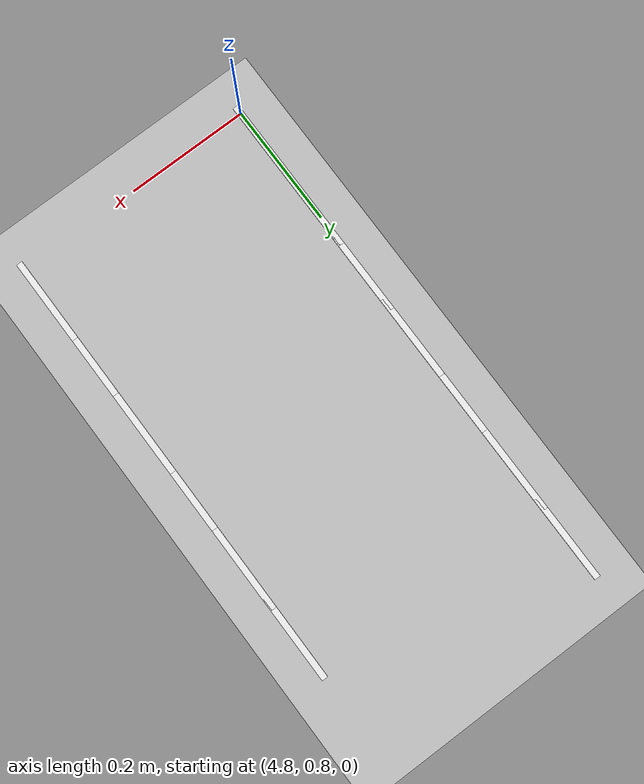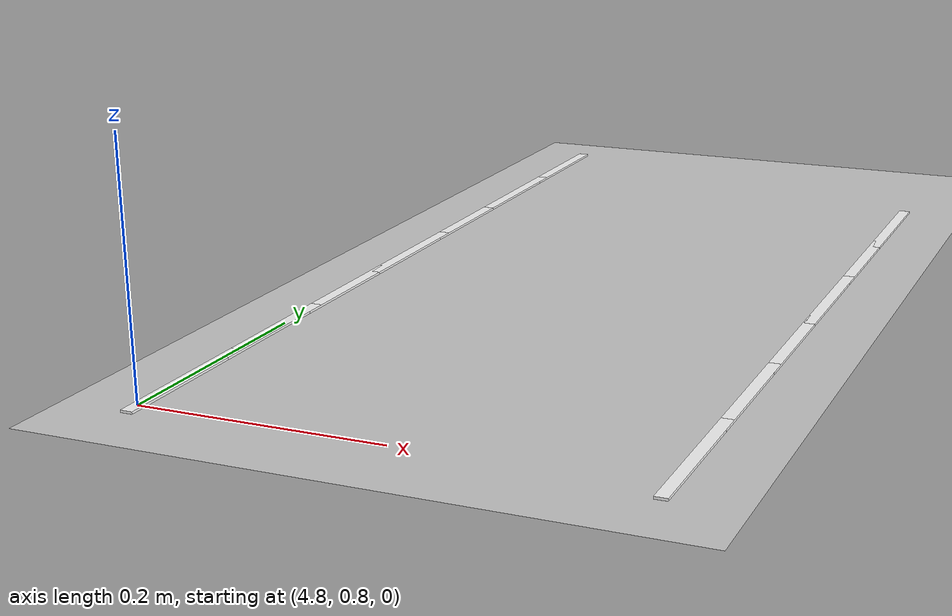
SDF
<sdf version="1.7">
 <world name="default">
  <model name="ground_plane">
   <static>1</static>
   <link name="link">
    <collision name="collision">
     <geometry><plane><normal>0 0 1</normal><size>100 100</size></plane></geometry>
     <surface>
      <contact><collide_bitmask>65535</collide_bitmask></contact>
      <friction><ode><mu>100</mu><mu2>50</mu2></ode></friction>
     </surface>
    </collision>
    <visual name="visual">
     <cast_shadows>0</cast_shadows>
     <geometry><plane><normal>0 0 1</normal><size>100 100</size></plane></geometry>
     <material>
      <script><uri>file://media/materials/scripts/gazebo.material</uri><name>Gazebo/Grey</name></script>
     </material>
    </visual>
   </link>
  </model>
  <model name="lane_line_left_131">
   <static>1</static>
   <link name="link">
    <pose>0 0 -0.004 0 -0 0</pose>
    <visual name="visual">
     <geometry><box><size>0.1424 0.01 0.01</size></box></geometry>
     <material><ambient>1 1 1 1</ambient><diffuse>1 1 1 1</diffuse></material>
    </visual>
    <collision name="collision"><geometry><box><size>0.1424 0.01 0.01</size></box></geometry></collision>
   </link>
   <pose>4.8 0.857143 0 0 -0 1.5708</pose>
  </model>
  <model name="lane_line_right_131">
   <static>1</static>
   <link name="link">
    <pose>0 0 -0.004 0 -0 0</pose>
    <visual name="visual">
     <geometry><box><size>0.1424 0.01 0.01</size></box></geometry>
     <material><ambient>1 1 1 1</ambient><diffuse>1 1 1 1</diffuse></material>
    </visual>
    <collision name="collision"><geometry><box><size>0.1424 0.01 0.01</size></box></geometry></collision>
   </link>
   <pose>5.2 0.857143 0 0 -0 1.5708</pose>
  </model>
  <model name="lane_line_left_132">
   <static>1</static>
   <link name="link">
    <pose>0 0 -0.004 0 -0 0</pose>
    <visual name="visual">
     <geometry><box><size>0.1424 0.01 0.01</size></box></geometry>
     <material><ambient>1 1 1 1</ambient><diffuse>1 1 1 1</diffuse></material>
    </visual>
    <collision name="collision"><geometry><box><size>0.1424 0.01 0.01</size></box></geometry></collision>
   </link>
   <pose>4.8 0.979592 0 0 -0 1.5708</pose>
  </model>
  <model name="lane_line_right_132">
   <static>1</static>
   <link name="link">
    <pose>0 0 -0.004 0 -0 0</pose>
    <visual name="visual">
     <geometry><box><size>0.1424 0.01 0.01</size></box></geometry>
     <material><ambient>1 1 1 1</ambient><diffuse>1 1 1 1</diffuse></material>
    </visual>
    <collision name="collision"><geometry><box><size>0.1424 0.01 0.01</size></box></geometry></collision>
   </link>
   <pose>5.2 0.979592 0 0 -0 1.5708</pose>
  </model>
  <model name="lane_line_left_133">
   <static>1</static>
   <link name="link">
    <pose>0 0 -0.004 0 -0 0</pose>
    <visual name="visual">
     <geometry><box><size>0.1424 0.01 0.01</size></box></geometry>
     <material><ambient>1 1 1 1</ambient><diffuse>1 1 1 1</diffuse></material>
    </visual>
    <collision name="collision"><geometry><box><size>0.1424 0.01 0.01</size></box></geometry></collision>
   </link>
   <pose>4.8 1.10204 0 0 -0 1.5708</pose>
  </model>
  <model name="lane_line_right_133">
   <static>1</static>
   <link name="link">
    <pose>0 0 -0.004 0 -0 0</pose>
    <visual name="visual">
     <geometry><box><size>0.1424 0.01 0.01</size></box></geometry>
     <material><ambient>1 1 1 1</ambient><diffuse>1 1 1 1</diffuse></material>
    </visual>
    <collision name="collision"><geometry><box><size>0.1424 0.01 0.01</size></box></geometry></collision>
   </link>
   <pose>5.2 1.10204 0 0 -0 1.5708</pose>
  </model>
  <model name="lane_line_left_134">
   <static>1</static>
   <link name="link">
    <pose>0 0 -0.004 0 -0 0</pose>
    <visual name="visual">
     <geometry><box><size>0.1424 0.01 0.01</size></box></geometry>
     <material><ambient>1 1 1 1</ambient><diffuse>1 1 1 1</diffuse></material>
    </visual>
    <collision name="collision"><geometry><box><size>0.1424 0.01 0.01</size></box></geometry></collision>
   </link>
   <pose>4.8 1.22449 0 0 -0 1.5708</pose>
  </model>
  <model name="lane_line_right_134">
   <static>1</static>
   <link name="link">
    <pose>0 0 -0.004 0 -0 0</pose>
    <visual name="visual">
     <geometry><box><size>0.1424 0.01 0.01</size></box></geometry>
     <material><ambient>1 1 1 1</ambient><diffuse>1 1 1 1</diffuse></material>
    </visual>
    <collision name="collision"><geometry><box><size>0.1424 0.01 0.01</size></box></geometry></collision>
   </link>
   <pose>5.2 1.22449 0 0 -0 1.5708</pose>
  </model>
  <model name="lane_line_left_135">
   <static>1</static>
   <link name="link">
    <pose>0 0 -0.004 0 -0 0</pose>
    <visual name="visual">
     <geometry><box><size>0.1424 0.01 0.01</size></box></geometry>
     <material><ambient>1 1 1 1</ambient><diffuse>1 1 1 1</diffuse></material>
    </visual>
    <collision name="collision"><geometry><box><size>0.1424 0.01 0.01</size></box></geometry></collision>
   </link>
   <pose>4.8 1.34694 0 0 -0 1.5708</pose>
  </model>
  <model name="lane_line_right_135">
   <static>1</static>
   <link name="link">
    <pose>0 0 -0.004 0 -0 0</pose>
    <visual name="visual">
     <geometry><box><size>0.1424 0.01 0.01</size></box></geometry>
     <material><ambient>1 1 1 1</ambient><diffuse>1 1 1 1</diffuse></material>
    </visual>
    <collision name="collision"><geometry><box><size>0.1424 0.01 0.01</size></box></geometry></collision>
   </link>
   <pose>5.2 1.34694 0 0 -0 1.5708</pose>
  </model>
  <model name="lane_line_left_136">
   <static>1</static>
   <link name="link">
    <pose>0 0 -0.004 0 -0 0</pose>
    <visual name="visual">
     <geometry><box><size>0.1424 0.01 0.01</size></box></geometry>
     <material><ambient>1 1 1 1</ambient><diffuse>1 1 1 1</diffuse></material>
    </visual>
    <collision name="collision"><geometry><box><size>0.1424 0.01 0.01</size></box></geometry></collision>
   </link>
   <pose>4.8 1.46939 0 0 -0 1.5708</pose>
  </model>
  <model name="lane_line_right_136">
   <static>1</static>
   <link name="link">
    <pose>0 0 -0.004 0 -0 0</pose>
    <visual name="visual">
     <geometry><box><size>0.1424 0.01 0.01</size></box></geometry>
     <material><ambient>1 1 1 1</ambient><diffuse>1 1 1 1</diffuse></material>
    </visual>
    <collision name="collision"><geometry><box><size>0.1424 0.01 0.01</size></box></geometry></collision>
   </link>
   <pose>5.2 1.46939 0 0 -0 1.5708</pose>
  </model>
  <model name="lane_line_left_137">
   <static>1</static>
   <link name="link">
    <pose>0 0 -0.004 0 -0 0</pose>
    <visual name="visual">
     <geometry><box><size>0.1424 0.01 0.01</size></box></geometry>
     <material><ambient>1 1 1 1</ambient><diffuse>1 1 1 1</diffuse></material>
    </visual>
    <collision name="collision"><geometry><box><size>0.1424 0.01 0.01</size></box></geometry></collision>
   </link>
   <pose>4.8 1.59184 0 0 -0 1.5708</pose>
  </model>
 </world>
</sdf>
